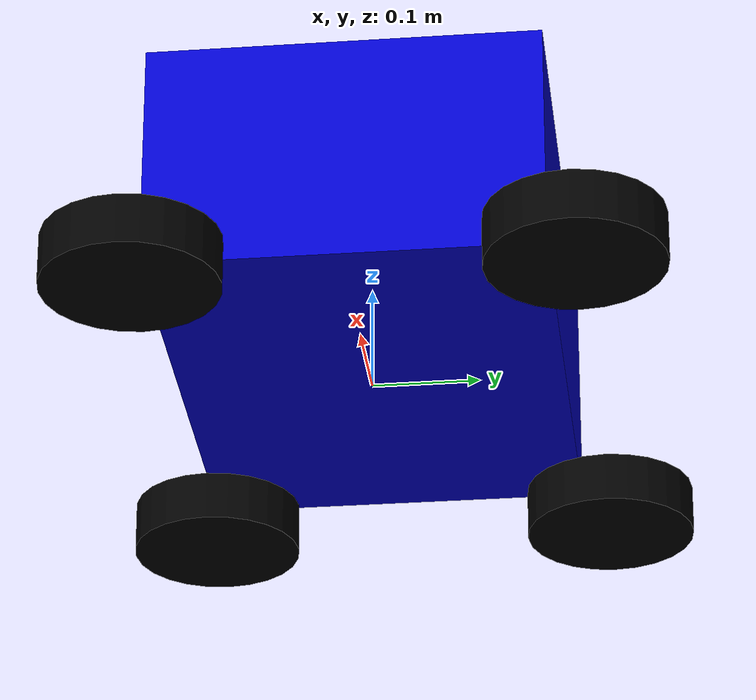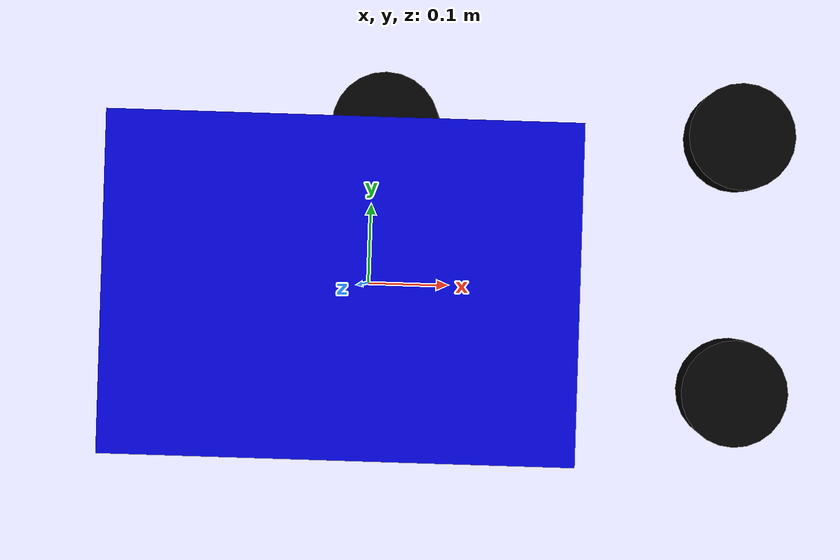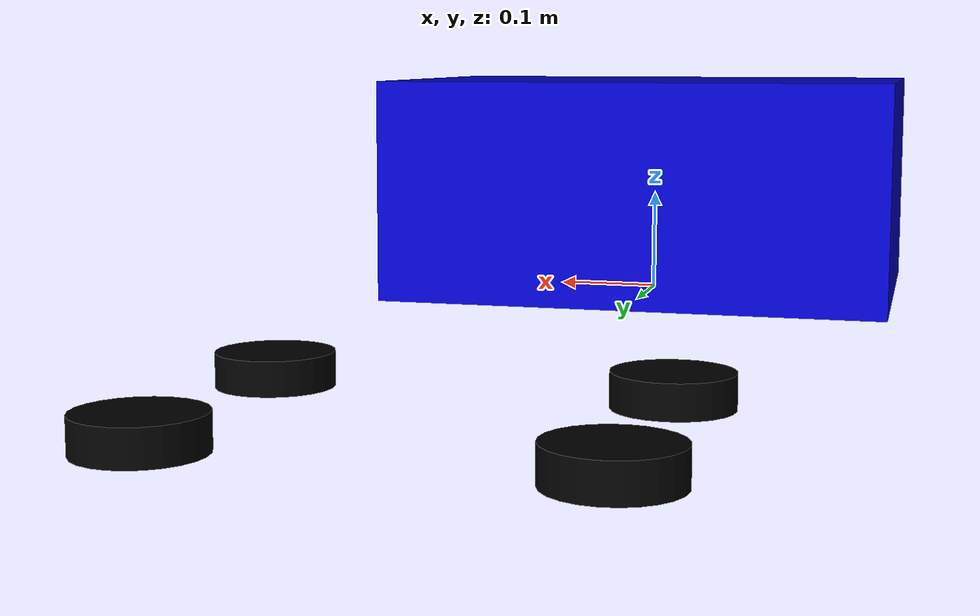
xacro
<?xml version="1.0"?>
<robot name="robot" xmlns:xacro="http://www.ros.org/wiki/xacro">

  <xacro:include filename="$(find zju_works)/param/wheel.xacro"/>

  <xacro:property name="deg_to_rad" value="0.01745329251994329577"/>

  <!-- Constants for robot dimensions -->
  <xacro:property name="width" value="0.36" />
  <xacro:property name="length" value="0.5" />
  <xacro:property name="hight" value="0.22" />

  <xacro:property name="wheel_radius" value="0.075" /> <!-- Link 1 -->
  <xacro:property name="thickness" value="0.044" /> <!-- Link 2 -->
  <xacro:property name="axel_offsetX" value="0.0" />
  <xacro:property name="axel_offsetY" value="0.0" />

  <!-- Links: inertial,visual,collision -->
  <link name="base_link">
    <inertial>
      <!-- origin is relative -->
      <origin xyz="0 0 ${hight/2}" rpy="0 0 0"/>
      <mass value="5"/>
      <inertia ixx="5" ixy="0" ixz="0" iyy="5" iyz="0" izz="5"/>
    </inertial>
    <visual>
      <origin xyz="0 0 ${hight/2}" rpy="0 0 0"/>
      <geometry>
        <box size="${length} ${width} ${hight}"/>
      </geometry>
      <material name="blue">
        	<color rgba="0 0 .8 1"/>
      </material>
    </visual>
    <collision>
      <!-- origin is relative -->
      <origin xyz="0 0 ${hight/2}" rpy="0 0 0"/>
      <geometry>
        <box size="${length} ${width} ${hight}"/>
      </geometry>
    </collision>
  </link>

  <!-- Wheels   -->
  <wheel name="wheel1" parent="base" radius="${wheel_radius}" thickness="${thickness}">
    <origin xyz="${length/2+axel_offsetX} ${width/2+axel_offsetY} ${wheel_radius/2}" rpy="${-90 * deg_to_rad} 0 0"/>
  </wheel>
  <wheel name="wheel2" parent="base" radius="${wheel_radius}" thickness="${thickness}">
    <origin xyz="${length/2+axel_offsetX} ${-width/2+axel_offsetY} ${wheel_radius/2}" rpy="${-90 * deg_to_rad} 0 0"/>
  </wheel>
  <wheel name="wheel3" parent="base" radius="${wheel_radius}" thickness="${thickness}">
    <origin xyz="${-length/2+axel_offsetX} ${-width/2+axel_offsetY} ${wheel_radius/2}" rpy="${-90 * deg_to_rad} 0 0"/>
  </wheel>
  <wheel name="wheel4" parent="base" radius="${wheel_radius}" thickness="${thickness}">
    <origin xyz="${-length/2+axel_offsetX} ${width/2+axel_offsetY} ${wheel_radius/2}" rpy="${-90 * deg_to_rad} 0 0"/>
  </wheel>

</robot>

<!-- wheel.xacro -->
<robot xmlns:xacro="http://www.ros.org/wiki/xacro">
  <macro name="wheel" params="name parent radius thickness *origin">
    <link name="${name}_link">
      <inertial>
        <origin xyz="${length/2+axel_offsetX} ${width/2+axel_offsetY} ${wheel_radius/2}" rpy="${-90 * deg_to_rad} 0 0"/>
        <mass value="1"/>
        <inertia ixx="0.2" ixy="0" ixz="0" iyy="0.2" iyz="0" izz="0.2"/>
      </inertial>
      <visual>
        <origin xyz="${length/2+axel_offsetX} ${width/2+axel_offsetY} ${wheel_radius/2}" rpy="${-90 * deg_to_rad} 0 0"/>
        <geometry>
          <cylinder radius="${wheel_radius}" length="${thickness}"/>
        </geometry>
        <material name="black">
        	<color rgba="0 0 0 1"/>
      	</material>
      </visual>
      <collision>
        <origin xyz="${length/2+axel_offsetX} ${width/2+axel_offsetY} ${wheel_radius/2}" rpy="${-90 * deg_to_rad} 0 0"/>
        <geometry>
          <cylinder radius="${wheel_radius}" length="${thickness}"/>
        </geometry>
      </collision>
    </link>

    <joint name="${name}" type="continuous">
      <parent link="${parent}_link"/>
      <child link="${name}_link"/>
      <insert_block name="origin"/>
      <axis xyz="0 0 1"/>
    </joint>

  </macro>
</robot>
